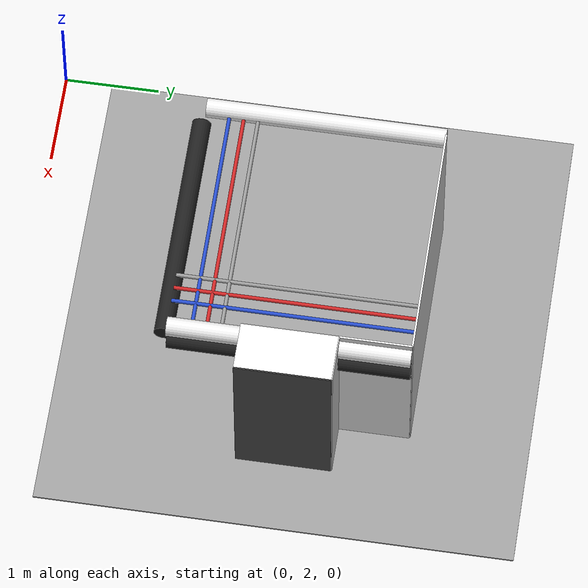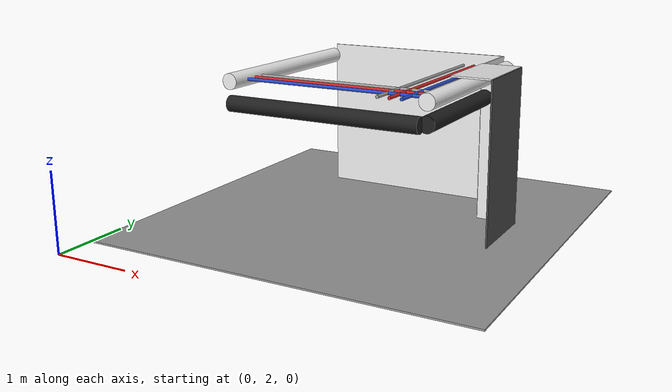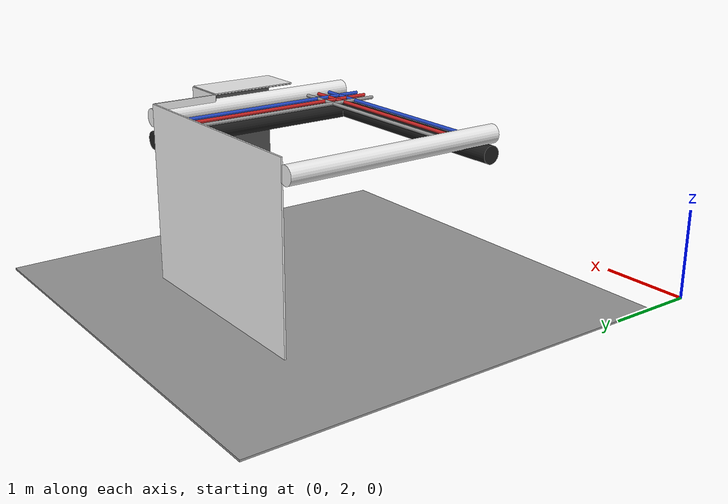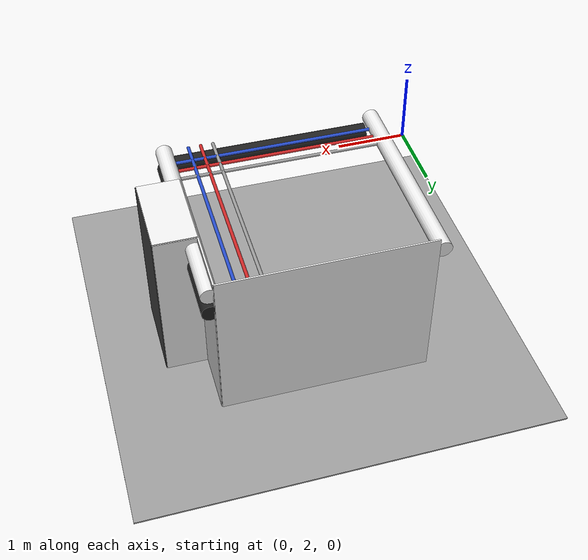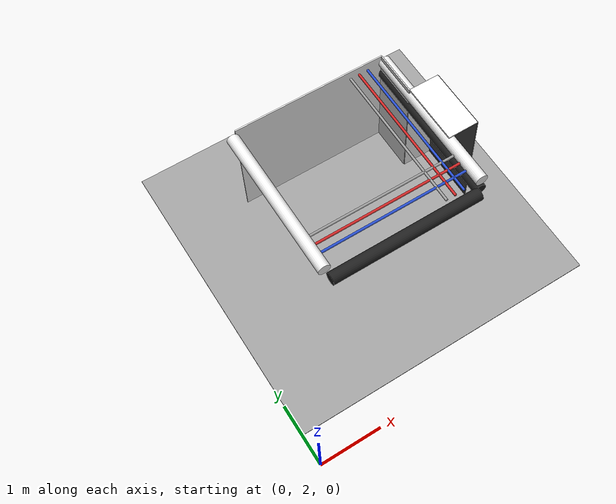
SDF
<sdf version="1.6">
 <world name="default">
  <model name="wall_left_1_2_0_2">
   <static>1</static>
   <pose>2.5 6.25 1.0 0.0 0.0 0.0</pose>
   <link name="link">
    <collision name="collision"><geometry><box><size>2.5 0.02 2.0</size></box></geometry></collision>
    <visual name="visual">
     <material>
      <script><name>Gazebo/White</name><uri>file://media/materials/scripts/gazebo.material</uri></script>
     </material>
     <geometry><box><size>2.5 0.02 2.0</size></box></geometry>
    </visual>
   </link>
  </model>
  <model name="black_pipe_right_1_2_0_2">
   <static>1</static>
   <pose>2.5 5.0 1.84 0.0 0.0 -1.57</pose>
   <link name="link_0">
    <visual name="visual">
     <pose>1.3 0 -0.25 1.57 0 0</pose>
     <geometry><cylinder><radius>0.1</radius><length>2.5</length></cylinder></geometry>
     <material>
      <script><uri>file://media/materials/scripts/gazebo.material</uri><name>Gazebo/Black</name></script>
     </material>
    </visual>
    <collision name="collision">
     <pose>1.3 0 -0.25 1.57 0 0</pose>
     <geometry><cylinder><radius>0.1</radius><length>2.5</length></cylinder></geometry>
    </collision>
   </link>
  </model>
  <model name="grey_pipe_right_1_2_0_2">
   <static>1</static>
   <pose>2.5 5.0 1.84 0.0 0.0 -1.57</pose>
   <link name="link_0">
    <visual name="visual">
     <pose>0.7 0 0 1.57 0 0</pose>
     <geometry><cylinder><radius>0.02</radius><length>2.5</length></cylinder></geometry>
     <material>
      <script><uri>file://media/materials/scripts/gazebo.material</uri><name>Gazebo/Grey</name></script>
     </material>
    </visual>
    <collision name="collision">
     <pose>0.7 0 0 1.57 0 0</pose>
     <geometry><cylinder><radius>0.02</radius><length>2.5</length></cylinder></geometry>
    </collision>
   </link>
  </model>
  <model name="red_pipe_right_1_2_0_2">
   <static>1</static>
   <pose>2.5 5.0 1.84 0.0 0.0 -1.57</pose>
   <link name="link_0">
    <visual name="visual">
     <pose>0.85 0 0 1.57 0 0</pose>
     <geometry><cylinder><radius>0.02</radius><length>2.5</length></cylinder></geometry>
     <material>
      <script><uri>file://media/materials/scripts/gazebo.material</uri><name>Gazebo/Red</name></script>
     </material>
    </visual>
    <collision name="collision">
     <pose>0.85 0 0 1.57 0 0</pose>
     <geometry><cylinder><radius>0.02</radius><length>2.5</length></cylinder></geometry>
    </collision>
   </link>
  </model>
  <model name="blue_pipe_right_1_2_0_2">
   <static>1</static>
   <pose>2.5 5.0 1.84 0.0 0.0 -1.57</pose>
   <link name="link_0">
    <visual name="visual">
     <pose>1 0 0 1.57 0 0</pose>
     <geometry><cylinder><radius>0.02</radius><length>2.5</length></cylinder></geometry>
     <material>
      <script><uri>file://media/materials/scripts/gazebo.material</uri><name>Gazebo/Blue</name></script>
     </material>
    </visual>
    <collision name="collision">
     <pose>1 0 0 1.57 0 0</pose>
     <geometry><cylinder><radius>0.02</radius><length>2.5</length></cylinder></geometry>
    </collision>
   </link>
  </model>
  <model name="white_pipe_left_1_1_2_0_2">
   <static>1</static>
   <pose>2.5 5.0 1.84 0.0 0.0 0.0</pose>
   <link name="link_0">
    <visual name="visual">
     <pose>-1.3 0 0 1.57 0 0</pose>
     <geometry><cylinder><radius>0.1</radius><length>2.5</length></cylinder></geometry>
     <material>
      <script><uri>file://media/materials/scripts/gazebo.material</uri><name>Gazebo/White</name></script>
     </material>
    </visual>
    <collision name="collision">
     <pose>-1.3 0 0 1.57 0 0</pose>
     <geometry><cylinder><radius>0.1</radius><length>2.5</length></cylinder></geometry>
    </collision>
   </link>
  </model>
  <model name="white_pipe_right_1_1_2_0_2">
   <static>1</static>
   <pose>2.5 5.0 1.84 0.0 0.0 0.0</pose>
   <link name="link_0">
    <visual name="visual">
     <pose>1.3 0 0 1.57 0 0</pose>
     <geometry><cylinder><radius>0.1</radius><length>2.5</length></cylinder></geometry>
     <material>
      <script><uri>file://media/materials/scripts/gazebo.material</uri><name>Gazebo/White</name></script>
     </material>
    </visual>
    <collision name="collision">
     <pose>1.3 0 0 1.57 0 0</pose>
     <geometry><cylinder><radius>0.1</radius><length>2.5</length></cylinder></geometry>
    </collision>
   </link>
  </model>
  <model name="black_pipe_right_1_1_2_0_2">
   <static>1</static>
   <pose>2.5 5.0 1.84 0.0 0.0 0.0</pose>
   <link name="link_0">
    <visual name="visual">
     <pose>1.3 0 -0.25 1.57 0 0</pose>
     <geometry><cylinder><radius>0.1</radius><length>2.5</length></cylinder></geometry>
     <material>
      <script><uri>file://media/materials/scripts/gazebo.material</uri><name>Gazebo/Black</name></script>
     </material>
    </visual>
    <collision name="collision">
     <pose>1.3 0 -0.25 1.57 0 0</pose>
     <geometry><cylinder><radius>0.1</radius><length>2.5</length></cylinder></geometry>
    </collision>
   </link>
  </model>
  <model name="grey_pipe_right_1_1_2_0_2">
   <static>1</static>
   <pose>2.5 5.0 1.84 0.0 0.0 0.0</pose>
   <link name="link_0">
    <visual name="visual">
     <pose>0.7 0 0 1.57 0 0</pose>
     <geometry><cylinder><radius>0.02</radius><length>2.5</length></cylinder></geometry>
     <material>
      <script><uri>file://media/materials/scripts/gazebo.material</uri><name>Gazebo/Grey</name></script>
     </material>
    </visual>
    <collision name="collision">
     <pose>0.7 0 0 1.57 0 0</pose>
     <geometry><cylinder><radius>0.02</radius><length>2.5</length></cylinder></geometry>
    </collision>
   </link>
  </model>
  <model name="red_pipe_right_1_1_2_0_2">
   <static>1</static>
   <pose>2.5 5.0 1.84 0.0 0.0 0.0</pose>
   <link name="link_0">
    <visual name="visual">
     <pose>0.85 0 0 1.57 0 0</pose>
     <geometry><cylinder><radius>0.02</radius><length>2.5</length></cylinder></geometry>
     <material>
      <script><uri>file://media/materials/scripts/gazebo.material</uri><name>Gazebo/Red</name></script>
     </material>
    </visual>
    <collision name="collision">
     <pose>0.85 0 0 1.57 0 0</pose>
     <geometry><cylinder><radius>0.02</radius><length>2.5</length></cylinder></geometry>
    </collision>
   </link>
  </model>
  <model name="blue_pipe_right_1_1_2_0_2">
   <static>1</static>
   <pose>2.5 5.0 1.84 0.0 0.0 0.0</pose>
   <link name="link_0">
    <visual name="visual">
     <pose>1 0 0 1.57 0 0</pose>
     <geometry><cylinder><radius>0.02</radius><length>2.5</length></cylinder></geometry>
     <material>
      <script><uri>file://media/materials/scripts/gazebo.material</uri><name>Gazebo/Blue</name></script>
     </material>
    </visual>
    <collision name="collision">
     <pose>1 0 0 1.57 0 0</pose>
     <geometry><cylinder><radius>0.02</radius><length>2.5</length></cylinder></geometry>
    </collision>
   </link>
  </model>
  <model name="wall_front_front_right_1_2_0_2">
   <static>1</static>
   <pose>3.75 5.875 1.0 0.0 0.0 -1.57</pose>
   <link name="link">
    <collision name="collision"><geometry><box><size>0.75 0.02 2.0</size></box></geometry></collision>
    <visual name="visual">
     <material>
      <script><name>Gazebo/White</name><uri>file://media/materials/scripts/gazebo.material</uri></script>
     </material>
     <geometry><box><size>0.75 0.02 2.0</size></box></geometry>
    </visual>
   </link>
  </model>
  <model name="wall_front_front_up_1_2_0_2">
   <static>1</static>
   <pose>3.75 5.0 2.0 0.0 0.0 -1.57</pose>
   <link name="link">
    <collision name="collision"><geometry><box><size>1.0 0.02 0.001</size></box></geometry></collision>
    <visual name="visual">
     <material>
      <script><name>Gazebo/White</name><uri>file://media/materials/scripts/gazebo.material</uri></script>
     </material>
     <geometry><box><size>1.0 0.02 0.001</size></box></geometry>
    </visual>
   </link>
  </model>
  <model name="wall_front_inside_back_1_2_0_2">
   <static>1</static>
   <pose>4.25 5.0 1.0 0.0 0.0 -1.57</pose>
   <link name="link">
    <collision name="collision"><geometry><box><size>1 0.02 2</size></box></geometry></collision>
    <visual name="visual">
     <material>
      <script><name>Gazebo/DarkGrey</name><uri>file://media/materials/scripts/gazebo.material</uri></script>
     </material>
     <geometry><box><size>1 0.02 2</size></box></geometry>
    </visual>
   </link>
  </model>
  <model name="wall_front_inside_left_1_2_0_2">
   <static>1</static>
   <pose>4.0 5.5 1.0 0.0 0.0 0.0</pose>
   <link name="link">
    <collision name="collision"><geometry><box><size>0.5 0.02 2</size></box></geometry></collision>
    <visual name="visual">
     <material>
      <script><name>Gazebo/White</name><uri>file://media/materials/scripts/gazebo.material</uri></script>
     </material>
     <geometry><box><size>0.5 0.02 2</size></box></geometry>
    </visual>
   </link>
  </model>
  <model name="wall_front_inside_top_1_2_0_2">
   <static>1</static>
   <pose>4.0 5.0 2.0 1.57 0.0 -1.57</pose>
   <link name="link">
    <collision name="collision"><geometry><box><size>1 0.02 0.5</size></box></geometry></collision>
    <visual name="visual">
     <material>
      <script><name>Gazebo/White</name><uri>file://media/materials/scripts/gazebo.material</uri></script>
     </material>
     <geometry><box><size>1 0.02 0.5</size></box></geometry>
    </visual>
   </link>
  </model>
  <model name="wall_bottom_1_2_0_2">
   <static>1</static>
   <pose>2.5 5.0 0.0 0.0 0.0 -1.57</pose>
   <link name="link">
    <collision name="collision"><geometry><box><size>5.0 5.0 0.02</size></box></geometry></collision>
    <visual name="visual">
     <material>
      <script><name>Gazebo/Grey</name><uri>file://media/materials/scripts/gazebo.material</uri></script>
     </material>
     <geometry><box><size>5.0 5.0 0.02</size></box></geometry>
    </visual>
   </link>
  </model>
 </world>
</sdf>
